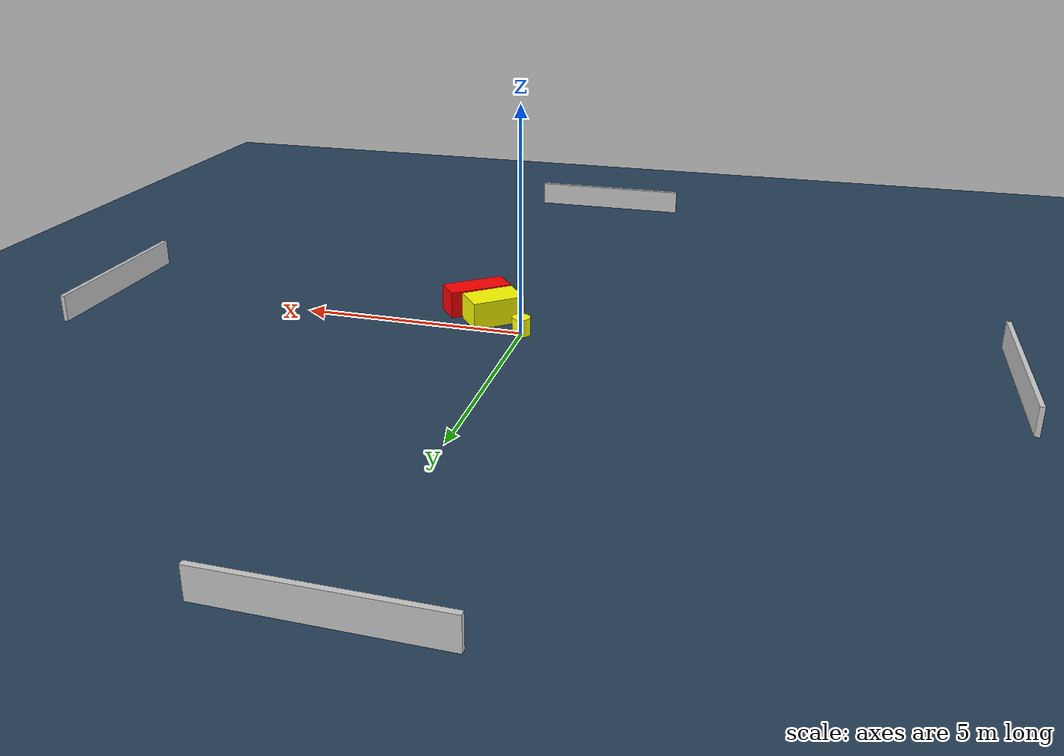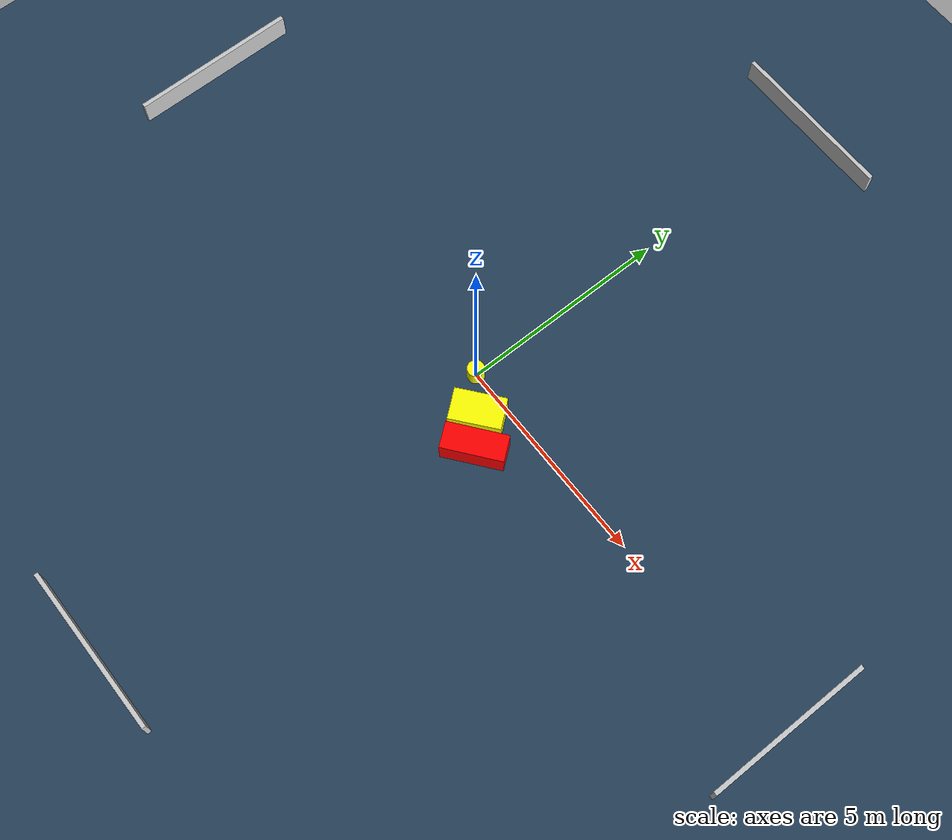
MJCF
<?xml version="1.0" ?>
<mujoco model="generated_environment">
  <option timestep="0.01" integrator="RK4" cone="elliptic"/>
  <default>
    <geom density="1"/>
  </default>
  <asset>
    <texture builtin="gradient" height="3072" name="skybox" rgb1="0.3 0.5 0.7" rgb2="0 0 0" type="skybox" width="512"/>
    <texture builtin="checker" height="300" name="groundplane" rgb1="0.2 0.3 0.4" rgb2="0.1 0.2 0.3" type="2d" width="300"/>
    <material name="groundplane" reflectance="0.2" texrepeat="5 5" texture="groundplane"/>
  </asset>
  <worldbody>
    <light dir="0 0 -1" directional="true" pos="0 0 1.5"/>
    <geom condim="3" friction="0.5 0.005 0.001" material="groundplane" name="floor" pos="0 0 0" size="0 0 0.05" type="plane"/>
    <body name="walls">
      <geom name="wall_1" condim="4" pos="-10.0 0.0 0.3" rgba="0.800000011920929 0.800000011920929 0.800000011920929 1.0" size="0.05 2.0 0.3" type="box"/>
      <geom name="wall_2" condim="4" pos="10.0 0.0 0.3" rgba="0.800000011920929 0.800000011920929 0.800000011920929 1.0" size="0.05 2.0 0.3" type="box"/>
      <geom name="wall_3" condim="4" pos="0.0 -10.0 0.3" rgba="0.800000011920929 0.800000011920929 0.800000011920929 1.0" size="2.0 0.05 0.3" type="box"/>
      <geom name="wall_4" condim="4" pos="0.0 10.0 0.3" rgba="0.800000011920929 0.800000011920929 0.800000011920929 1.0" size="2.0 0.05 0.3" type="box"/>
    </body>
    <body name="robot">
      <joint name="joint_x" type="slide" pos="0 0 0" axis="1 0 0"/>
      <joint name="joint_y" type="slide" pos="0 0 0" axis="0 1 0"/>
      <geom name="robot" type="cylinder" pos="0.0 0.0 0.2" size="0.2 0.2 0.0" mass="5.0" friction="1.0 0.005 0.0001" condim="4" rgba="1.0 1.0 0.0 1.0"/>
    </body>
    <body name="obstacle_1_movable">
      <geom name="obstacle_1_movable" condim="4" pos="0.8132437823255194 -0.6030335011722614 0.3" euler="0 0 128.97470076753768" friction="0.0 0.005 0.001" rgba="1.0 1.0 0.0 1.0" size="0.3703330122118047 0.5954728173414621 0.3" type="box" mass="0.1"/>
      <joint type="free"/>
    </body>
    <body name="obstacle_2_static">
      <geom name="obstacle_2_static" condim="4" pos="1.3643289944766577 -1.1237343691436885 0.3" euler="0 0 217.9913267872856" friction="0.0 0.005 0.001" rgba="1.0 0.0 0.0 1.0" size="0.7147395604450695 0.3075365269269526 0.3" type="box"/>
    </body>
  </worldbody>
  <actuator>
    <motor name="actuator_x" joint="joint_x" gear="1" ctrlrange="-1 1"/>
    <motor name="actuator_y" joint="joint_y" gear="1" ctrlrange="-1 1"/>
  </actuator>
</mujoco>
